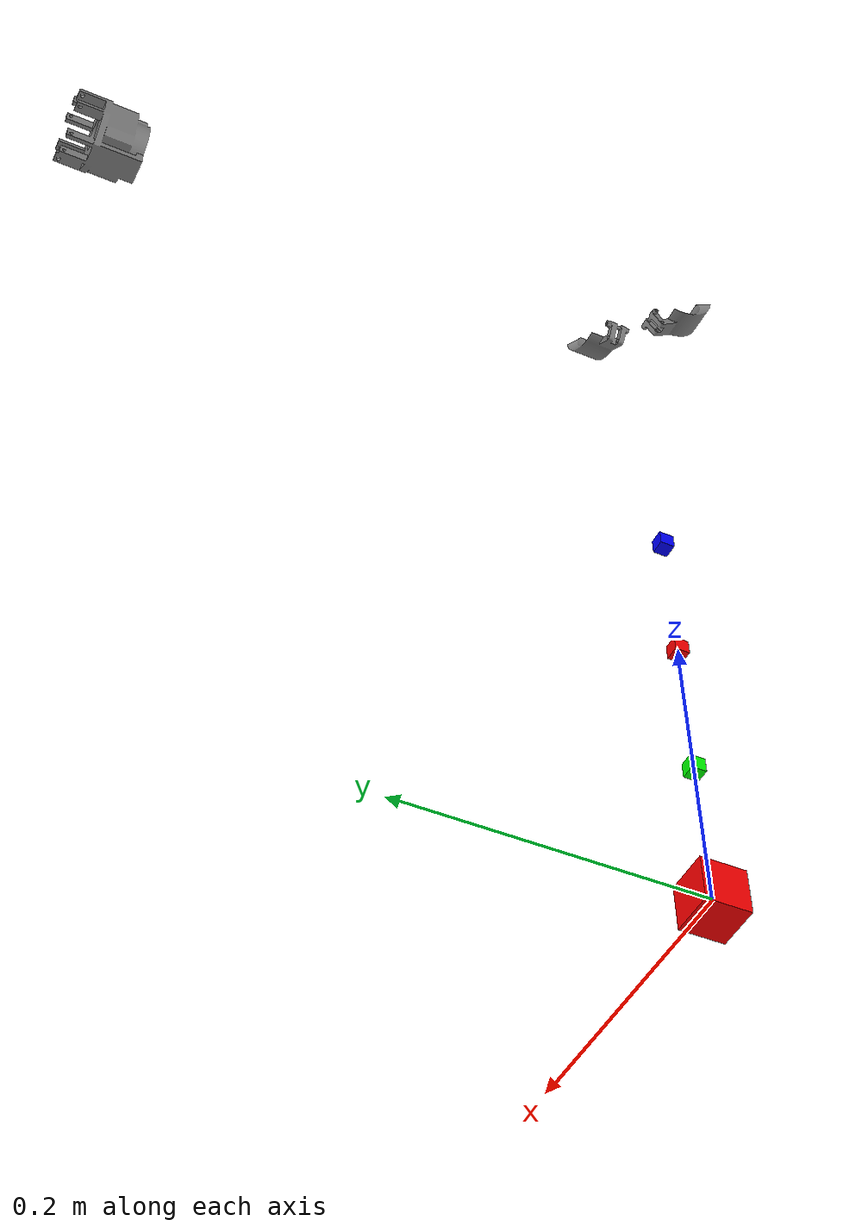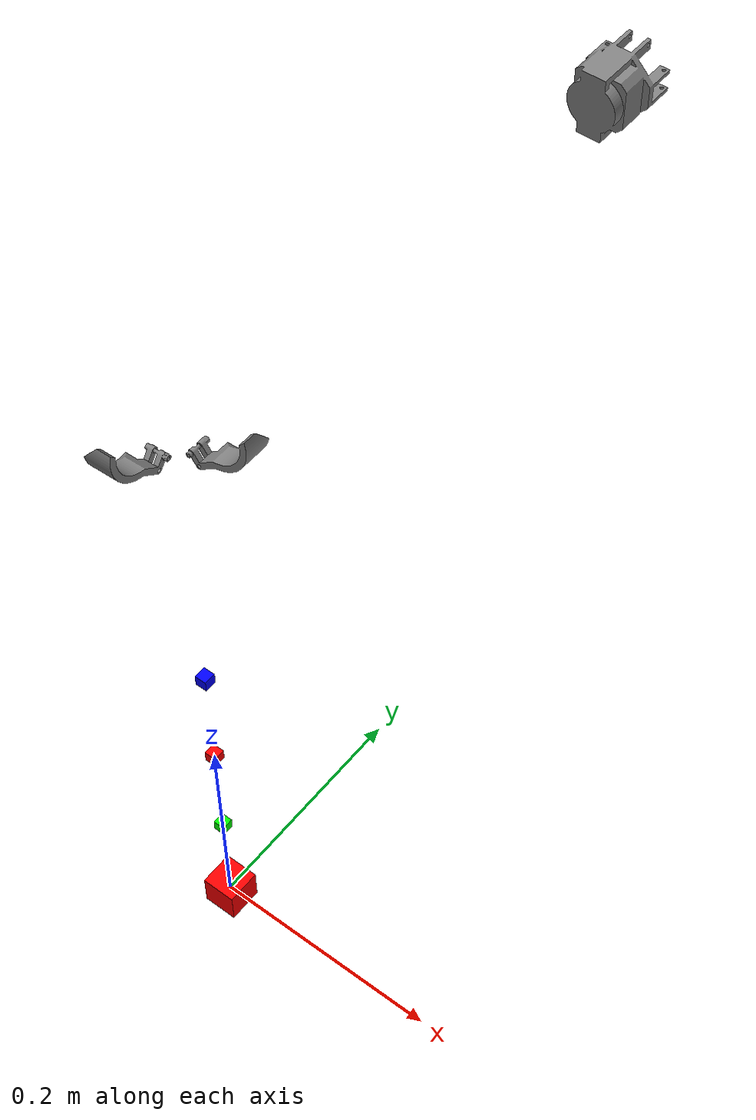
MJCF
<mujoco model="v5_gripper">
  <visual>
    <headlight ambient="0 0 0" diffuse="0.5 0.5 0.5" specular="1 1 1"/>
    <quality shadowsize="8192"/>
  </visual>
  <compiler angle="radian" meshdir="../../meshes/" autolimits="true"/>
  <option integrator="RK4" timestep="0.00025">
    <flag gravity="disable"/>
  </option>
  <size njmax="500" nconmax="100"/>
  <default/>
  <asset>
    <mesh name="gripper_base" file="gripper_base.stl" scale="0.01 0.01 0.01"/>
    <mesh name="finger_1_1" file="finger_1.stl" scale="0.01 0.01 0.01"/>
    <mesh name="finger_4_1" file="finger_4.stl" scale="0.01 0.01 0.01"/>
    <mesh name="finger_3_1" file="finger_3.stl" scale="0.01 0.01 0.01"/>
    <mesh name="finger_2_1" file="finger_2.stl" scale="0.01 0.01 0.01"/>
    <mesh file="../../object_description/meshes/wrench.stl" scale=".0011 .0011 .0011"/>
  </asset>
  <worldbody>
    <light pos="0.1 1 1" dir="-0.1 -1 -1" diffuse="1 1 1"/>
    <body name="wrench" pos="0 0 0">
        <joint type="free"/>
        <geom type="box" size="0.015 0.015 0.015" rgba="1 0 0 1"/>
    </body>

    <body name="base" pos="0 0 0">

      <geom type="box" size="0.005 0.005 0.005" rgba="1 1 1 1"/>
    </body>
    <body name="before_traj" pos="0 0 0.1">
      <joint type="free"/>
      <geom type="box" size="0.005 0.005 0.005" rgba="0 1 0 1"/>
    </body>
    <body name="closest_traj" pos="0 0 0.2">
      <joint type="free"/>
      <geom type="box" size="0.005 0.005 0.005" rgba="1 0 0 1"/>
    </body>
    <body name="after_traj" pos="0 0 0.3">
      <joint type="free"/>
      <geom type="box" size="0.005 0.005 0.005" rgba="0 0 1 1"/>
    </body>

    <body name="gripper" pos="0 0 0.5">
      <joint name="gripper_joint" type="free"/>
      <geom type="mesh" contype="0" conaffinity="0" group="1" density="0" mesh="gripper_base"/>
      <geom type="mesh" mesh="gripper_base"/>
      <body name="finger_1" pos="0.005959 -0.022452 0.054853">
        <inertial pos="-0.00864261 -0.0223486 0.0179735" quat="0.653281 0.270598 -0.270598 0.653281" mass="0.00589988" diaginertia="1.33333e-06 1.33333e-06 1.33333e-06"/>
        <joint name="gripper_joint_1" armature="0.01" pos="0 0 0" axis="0.999727 0.017623 0.01534" range="-1 0"/>
        <geom pos="-0.005959 0.022452 -0.054853" type="mesh" contype="0" conaffinity="0" group="1" density="0" mesh="finger_1_1"/>
        <geom pos="-0.005959 0.022452 -0.054853" type="mesh" mesh="finger_1_1"/>
      </body>
      <body name="finger_4" pos="0.022822 0.00746 0.054188">
        <inertial pos="0.0225221 -0.00220606 0.017841" quat="0.92388 0 0.382683 0" mass="0.00589986" diaginertia="1.33333e-06 1.33333e-06 1.33333e-06"/>
        <joint name="gripper_joint_2" armature="0.01" pos="0 0 0" axis="-0.017134 0.999359 -0.031436" range="-1 0"/>
        <geom pos="-0.022822 -0.00746 -0.054188" type="mesh" contype="0" conaffinity="0" group="1" density="0" mesh="finger_4_1"/>
        <geom pos="-0.022822 -0.00746 -0.054188" type="mesh" mesh="finger_4_1"/>
      </body>
      <body name="finger_3" pos="-0.007093 0.024302 0.053188">
        <inertial pos="0.00809087 0.0234324 0.0168113" quat="0.653281 -0.270598 0.270598 0.653281" mass="0.00589994" diaginertia="1.33333e-06 1.33333e-06 1.33333e-06"/>
        <joint name="gripper_joint_3" armature="0.01" pos="0 0 0" axis="-0.999727 -0.017623 -0.01534" range="-1 0"/>
        <geom pos="0.007093 -0.024302 -0.053188" type="mesh" contype="0" conaffinity="0" group="1" density="0" mesh="finger_3_1"/>
        <geom pos="0.007093 -0.024302 -0.053188" type="mesh" mesh="finger_3_1"/>
      </body>
      <body name="finger_2" pos="-0.023955 -0.005611 0.053852">
        <inertial pos="-0.0230751 0.00329087 0.0169449" quat="0 0.92388 0 0.382683" mass="0.00589981" diaginertia="1.33333e-06 1.33333e-06 1.33333e-06"/>
        <joint name="gripper_joint_4" armature="0.01" pos="0 0 0" axis="0.017134 -0.999359 0.031436" range="-1 0"/>
        <geom pos="0.023955 0.005611 -0.053852" type="mesh" contype="0" conaffinity="0" group="1" density="0" mesh="finger_2_1"/>
        <geom pos="0.023955 0.005611 -0.053852" type="mesh" mesh="finger_2_1"/>
      </body>
    </body>
  </worldbody>
  <contact>
    <exclude name="gj1_contact" body1="gripper" body2="finger_1"/>
    <exclude name="gj2_contact" body1="gripper" body2="finger_2"/>
    <exclude name="gj3_contact" body1="gripper" body2="finger_3"/>
    <exclude name="gj4_contact" body1="gripper" body2="finger_4"/>

    <exclude name="before_gripper_contact" body1="before_traj" body2="gripper"/>
    <exclude name="before_wrench_contact" body1="before_traj" body2="wrench"/>
    <exclude name="closest_gripper_contact" body1="closest_traj" body2="gripper"/>
    <exclude name="closest_wrench_contact" body1="closest_traj" body2="wrench"/>
    <exclude name="after_gripper_contact" body1="after_traj" body2="gripper"/>
    <exclude name="after_wrench_contact" body1="after_traj" body2="wrench"/>
    <exclude name="before_closest_contact" body1="before_traj" body2="closest_traj"/>
    <exclude name="before_after_contact" body1="before_traj" body2="after_traj"/>
    <exclude name="after_closest_contact" body1="after_traj" body2="closest_traj"/>
    <exclude name="base_wrench_contact" body1="base" body2="wrench"/>
  </contact>

  <actuator>
    <velocity name="GJ1" joint="gripper_joint_1" kv="3" gear="6 0 0 0 0 0"/>
    <velocity name="GJ2" joint="gripper_joint_2" kv="3" gear="6 0 0 0 0 0"/>
    <velocity name="GJ3" joint="gripper_joint_3" kv="3" gear="6 0 0 0 0 0"/>
    <velocity name="GJ4" joint="gripper_joint_4" kv="3" gear="6 0 0 0 0 0"/>
  </actuator>

  <sensor>
    <jointpos name="GJ1_encoder" joint="gripper_joint_1" noise="0.001"/>
    <jointpos name="GJ2_encoder" joint="gripper_joint_2" noise="0.001"/>
    <jointpos name="GJ3_encoder" joint="gripper_joint_3" noise="0.001"/>
    <jointpos name="GJ4_encoder" joint="gripper_joint_4" noise="0.001"/>
  </sensor>
</mujoco>
